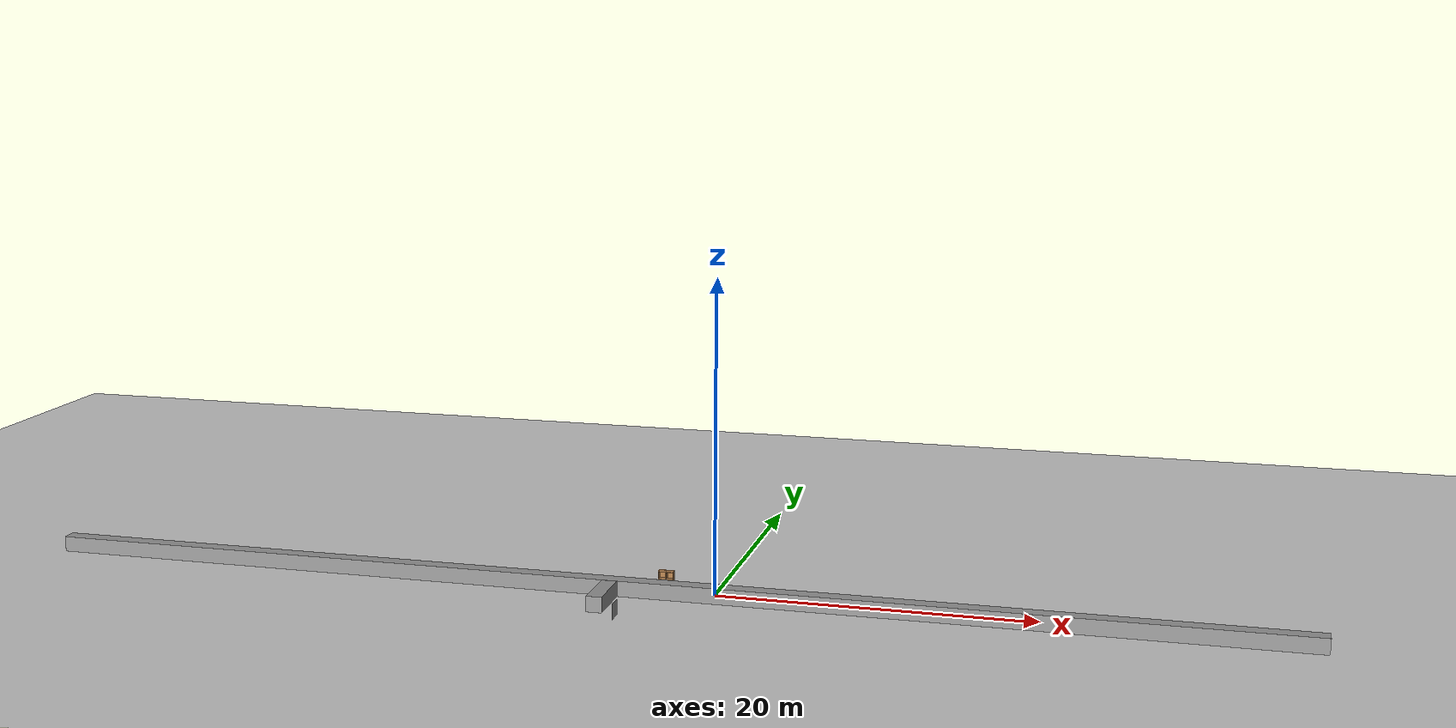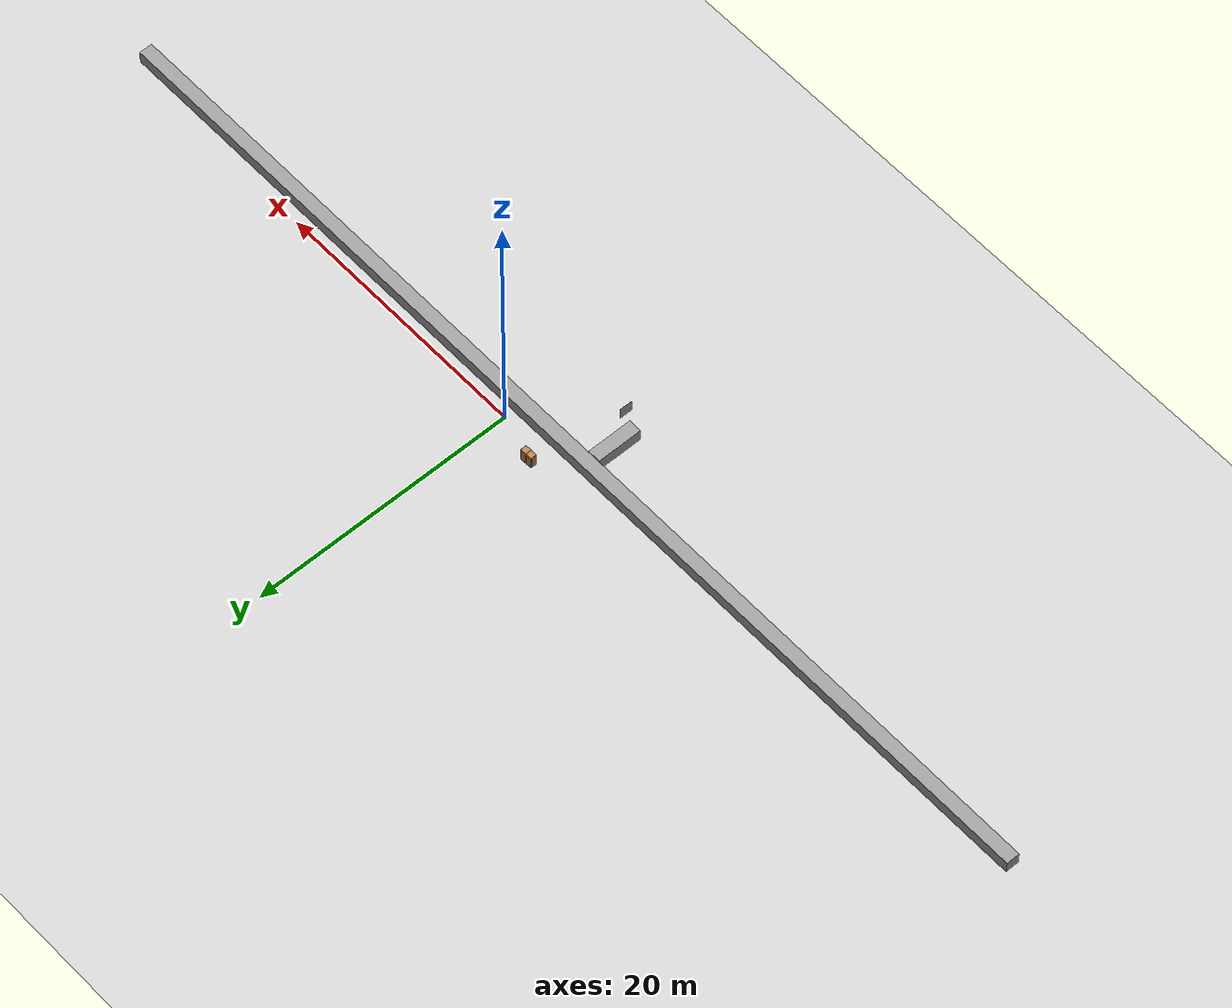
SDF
<sdf version="1.7">
 <world name="default">
  <model name="ground_plane">
   <static>1</static>
   <link name="link">
    <collision name="collision">
     <geometry><plane><normal>0 0 1</normal><size>100 100</size></plane></geometry>
     <surface>
      <contact><collide_bitmask>65535</collide_bitmask></contact>
      <friction><ode><mu>100</mu><mu2>50</mu2></ode></friction>
     </surface>
    </collision>
    <visual name="visual">
     <cast_shadows>0</cast_shadows>
     <geometry><plane><normal>0 0 1</normal><size>100 100</size></plane></geometry>
     <material>
      <script><uri>file://media/materials/scripts/gazebo.material</uri><name>Gazebo/Grey</name></script>
     </material>
    </visual>
   </link>
  </model>
  <model name="cabinet">
   <static>1</static>
   <link name="cabinet_bottom_plate">
    <inertial>
     <pose>0 0 -1 0 -0 0</pose>
     <inertia><ixx>2.05</ixx><ixy>0</ixy><ixz>0</ixz><iyy>2.05</iyy><iyz>0</iyz><izz>2.05</izz></inertia>
     <mass>25</mass>
    </inertial>
    <collision name="cabinet_bottom_plate_geom">
     <pose>0 0 0.01 0 -0 0</pose>
     <geometry><box><size>0.45 0.45 0.02</size></box></geometry>
    </collision>
    <visual name="cabinet_bottom_plate_geom_visual">
     <pose>0 0 0.01 0 -0 0</pose>
     <geometry><box><size>0.45 0.45 0.02</size></box></geometry>
     <material>
      <script><uri>file://media/materials/scripts/gazebo.material</uri><name>Gazebo/Wood</name></script>
     </material>
    </visual>
    <collision name="cabinet_bottom_plate_geom_cabinet_back_plate">
     <pose>0.235 0 0.51 0 -0 0</pose>
     <geometry><box><size>0.02 0.45 1.02</size></box></geometry>
    </collision>
    <visual name="cabinet_bottom_plate_geom_cabinet_back_plate_visual">
     <pose>0.235 0 0.51 0 -0 0</pose>
     <geometry><box><size>0.02 0.45 1.02</size></box></geometry>
     <material>
      <script><uri>file://media/materials/scripts/gazebo.material</uri><name>Gazebo/Wood</name></script>
     </material>
    </visual>
    <collision name="cabinet_bottom_plate_geom_cabinet_left_plate">
     <pose>0 0.235 0.51 0 -0 0</pose>
     <geometry><box><size>0.45 0.02 1.02</size></box></geometry>
    </collision>
    <visual name="cabinet_bottom_plate_geom_cabinet_left_plate_visual">
     <pose>0 0.235 0.51 0 -0 0</pose>
     <geometry><box><size>0.45 0.02 1.02</size></box></geometry>
     <material>
      <script><uri>file://media/materials/scripts/gazebo.material</uri><name>Gazebo/Wood</name></script>
     </material>
    </visual>
    <collision name="cabinet_bottom_plate_geom_cabinet_middle_plate">
     <pose>0 0 0.51 0 -0 0</pose>
     <geometry><box><size>0.45 0.45 0.02</size></box></geometry>
    </collision>
    <visual name="cabinet_bottom_plate_geom_cabinet_middle_plate_visual">
     <pose>0 0 0.51 0 -0 0</pose>
     <geometry><box><size>0.45 0.45 0.02</size></box></geometry>
     <material>
      <script><uri>file://media/materials/scripts/gazebo.material</uri><name>Gazebo/Wood</name></script>
     </material>
    </visual>
    <collision name="cabinet_bottom_plate_geom_cabinet_right_plate">
     <pose>0 -0.235 0.51 0 -0 0</pose>
     <geometry><box><size>0.45 0.02 1.02</size></box></geometry>
    </collision>
    <visual name="cabinet_bottom_plate_geom_cabinet_right_plate_visual">
     <pose>0 -0.235 0.51 0 -0 0</pose>
     <geometry><box><size>0.45 0.02 1.02</size></box></geometry>
     <material>
      <script><uri>file://media/materials/scripts/gazebo.material</uri><name>Gazebo/Wood</name></script>
     </material>
    </visual>
    <collision name="cabinet_bottom_plate_geom_cabinet_top_plate">
     <pose>0 0 1.01 0 -0 0</pose>
     <geometry><box><size>0.45 0.45 0.02</size></box></geometry>
    </collision>
    <visual name="cabinet_bottom_plate_geom_cabinet_top_plate_visual">
     <pose>0 0 1.01 0 -0 0</pose>
     <geometry><box><size>0.45 0.45 0.02</size></box></geometry>
     <material>
      <script><uri>file://media/materials/scripts/gazebo.material</uri><name>Gazebo/Wood</name></script>
     </material>
    </visual>
   </link>
   <pose>-3.67483 1.06476 0 0 -0 1.60497</pose>
  </model>
  <model name="cabinet_clone">
   <static>1</static>
   <link name="cabinet_bottom_plate">
    <inertial>
     <pose>0 0 -1 0 -0 0</pose>
     <inertia><ixx>2.05</ixx><ixy>0</ixy><ixz>0</ixz><iyy>2.05</iyy><iyz>0</iyz><izz>2.05</izz></inertia>
     <mass>25</mass>
    </inertial>
    <collision name="cabinet_bottom_plate_geom">
     <pose>0 0 0.01 0 -0 0</pose>
     <geometry><box><size>0.45 0.45 0.02</size></box></geometry>
    </collision>
    <visual name="cabinet_bottom_plate_geom_visual">
     <pose>0 0 0.01 0 -0 0</pose>
     <geometry><box><size>0.45 0.45 0.02</size></box></geometry>
     <material>
      <script><uri>file://media/materials/scripts/gazebo.material</uri><name>Gazebo/Wood</name></script>
     </material>
    </visual>
    <collision name="cabinet_bottom_plate_geom_cabinet_back_plate">
     <pose>0.235 0 0.51 0 -0 0</pose>
     <geometry><box><size>0.02 0.45 1.02</size></box></geometry>
    </collision>
    <visual name="cabinet_bottom_plate_geom_cabinet_back_plate_visual">
     <pose>0.235 0 0.51 0 -0 0</pose>
     <geometry><box><size>0.02 0.45 1.02</size></box></geometry>
     <material>
      <script><uri>file://media/materials/scripts/gazebo.material</uri><name>Gazebo/Wood</name></script>
     </material>
    </visual>
    <collision name="cabinet_bottom_plate_geom_cabinet_left_plate">
     <pose>0 0.235 0.51 0 -0 0</pose>
     <geometry><box><size>0.45 0.02 1.02</size></box></geometry>
    </collision>
    <visual name="cabinet_bottom_plate_geom_cabinet_left_plate_visual">
     <pose>0 0.235 0.51 0 -0 0</pose>
     <geometry><box><size>0.45 0.02 1.02</size></box></geometry>
     <material>
      <script><uri>file://media/materials/scripts/gazebo.material</uri><name>Gazebo/Wood</name></script>
     </material>
    </visual>
    <collision name="cabinet_bottom_plate_geom_cabinet_middle_plate">
     <pose>0 0 0.51 0 -0 0</pose>
     <geometry><box><size>0.45 0.45 0.02</size></box></geometry>
    </collision>
    <visual name="cabinet_bottom_plate_geom_cabinet_middle_plate_visual">
     <pose>0 0 0.51 0 -0 0</pose>
     <geometry><box><size>0.45 0.45 0.02</size></box></geometry>
     <material>
      <script><uri>file://media/materials/scripts/gazebo.material</uri><name>Gazebo/Wood</name></script>
     </material>
    </visual>
    <collision name="cabinet_bottom_plate_geom_cabinet_right_plate">
     <pose>0 -0.235 0.51 0 -0 0</pose>
     <geometry><box><size>0.45 0.02 1.02</size></box></geometry>
    </collision>
    <visual name="cabinet_bottom_plate_geom_cabinet_right_plate_visual">
     <pose>0 -0.235 0.51 0 -0 0</pose>
     <geometry><box><size>0.45 0.02 1.02</size></box></geometry>
     <material>
      <script><uri>file://media/materials/scripts/gazebo.material</uri><name>Gazebo/Wood</name></script>
     </material>
    </visual>
    <collision name="cabinet_bottom_plate_geom_cabinet_top_plate">
     <pose>0 0 1.01 0 -0 0</pose>
     <geometry><box><size>0.45 0.45 0.02</size></box></geometry>
    </collision>
    <visual name="cabinet_bottom_plate_geom_cabinet_top_plate_visual">
     <pose>0 0 1.01 0 -0 0</pose>
     <geometry><box><size>0.45 0.45 0.02</size></box></geometry>
     <material>
      <script><uri>file://media/materials/scripts/gazebo.material</uri><name>Gazebo/Wood</name></script>
     </material>
    </visual>
   </link>
   <pose>-3.1903 1.07278 0 0 -0 1.60497</pose>
  </model>
  <model name="unit_box_clone_clone">
   <pose>-4.00405 -1.22708 0.498067 0 -0.000789 -1.3e-05</pose>
   <link name="link">
    <inertial>
     <mass>1</mass>
     <inertia>
      <ixx>0.166667</ixx>
      <ixy>0</ixy>
      <ixz>0</ixz>
      <iyy>0.166667</iyy>
      <iyz>0</iyz>
      <izz>0.166667</izz>
     </inertia>
    </inertial>
    <collision name="collision"><geometry><box><size>80.8531 1 1</size></box></geometry></collision>
    <visual name="visual">
     <geometry><box><size>80.8531 1 1</size></box></geometry>
     <material>
      <script><name>Gazebo/Grey</name><uri>file://media/materials/scripts/gazebo.material</uri></script>
     </material>
    </visual>
   </link>
  </model>
  <model name="unit_box_0_clone_0_clone">
   <pose>-6.34198 -3.47849 0.499645 -0.000207 -0 0.001464</pose>
   <link name="link">
    <inertial>
     <mass>1</mass>
     <inertia>
      <ixx>0.166667</ixx>
      <ixy>0</ixy>
      <ixz>0</ixz>
      <iyy>0.166667</iyy>
      <iyz>0</iyz>
      <izz>0.166667</izz>
     </inertia>
    </inertial>
    <collision name="collision"><geometry><box><size>1 3.43894 1</size></box></geometry></collision>
    <visual name="visual">
     <geometry><box><size>1 3.43894 1</size></box></geometry>
     <material>
      <script><name>Gazebo/Grey</name><uri>file://media/materials/scripts/gazebo.material</uri></script>
     </material>
    </visual>
   </link>
  </model>
  <model name="unit_box_2">
   <pose>-4.83662 -5.80637 0.49932 -0 -0.000347 -0.003063</pose>
   <link name="link">
    <inertial>
     <mass>1</mass>
     <inertia>
      <ixx>0.166667</ixx>
      <ixy>0</ixy>
      <ixz>0</ixz>
      <iyy>0.166667</iyy>
      <iyz>0</iyz>
      <izz>0.166667</izz>
     </inertia>
    </inertial>
    <collision name="collision"><geometry><box><size>0.0010749 1 1</size></box></geometry></collision>
    <visual name="visual">
     <geometry><box><size>0.0010749 1 1</size></box></geometry>
     <material>
      <script><name>Gazebo/Grey</name><uri>file://media/materials/scripts/gazebo.material</uri></script>
     </material>
    </visual>
   </link>
  </model>
 </world>
</sdf>
